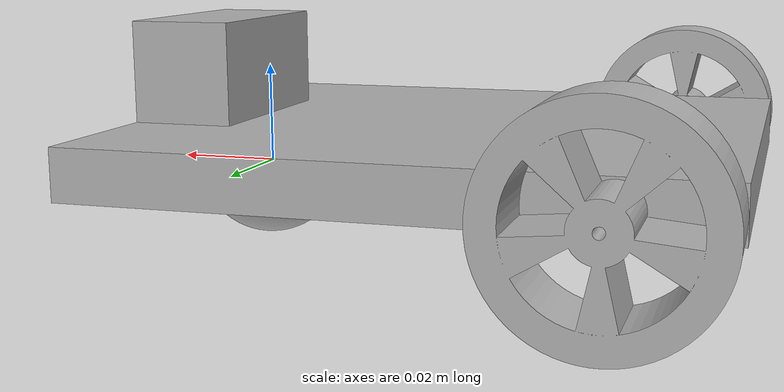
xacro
<?xml version="1.0" ?>
<robot name="differential_drive" xmlns:xacro="http://www.ros.org/wiki/xacro">

<!--Including other xacro files-->
<xacro:include filename="$(find differential_drive_description)/urdf/materials.xacro" />
<xacro:include filename="$(find differential_drive_description)/urdf/differential_drive.trans" />
<xacro:include filename="$(find differential_drive_description)/urdf/differential_drive.gazebo" />

<!--Defining Links-->
<link name="base_link">
  <inertial>
    <origin rpy="0 0 0" xyz="-0.050010469235296664 9.471423530512231e-18 0.0050000000000195"/>
    <mass value="1.0"/>
    <inertia ixx="0.0012083" ixy="-0.0" ixz="0.0" iyy="0.0010167" iyz="0.0" izz="0.0022083"/>
  </inertial>
  <visual>
    <origin rpy="0 0 0" xyz="0 0 0"/>
    <geometry>
      <mesh filename="package://differential_drive_description/meshes/base_link.stl" scale="0.001 0.001 0.001"/>
    </geometry>
    <material name="silver"/>
  </visual>
  <collision>
    <origin rpy="0 0 0" xyz="0 0 0"/>
    <geometry>
      <mesh filename="package://differential_drive_description/meshes/base_link.stl" scale="0.001 0.001 0.001"/>
    </geometry>
  </collision>
</link>

<link name="left_wheel_1">
  <inertial>
    <origin rpy="0 0 0" xyz="-1.1920926745734306e-09 0.009 7.450615905485458e-11"/>
    <mass value="0.25"/>
    <inertia ixx="0.000034514" ixy="0.0" ixz="-0.0" iyy="0.000059653" iyz="-0.0" izz="0.000034514"/>
  </inertial>
  <visual>
    <origin rpy="0 0 0" xyz="0.08 -0.052 -0.005"/>
    <geometry>
      <mesh filename="package://differential_drive_description/meshes/left_wheel_1.stl" scale="0.001 0.001 0.001"/>
    </geometry>
    <material name="silver"/>
  </visual>
  <collision>
    <origin rpy="0 0 0" xyz="0.08 -0.052 -0.005"/>
    <geometry>
      <mesh filename="package://differential_drive_description/meshes/left_wheel_1.stl" scale="0.001 0.001 0.001"/>
    </geometry>
  </collision>
</link>

<link name="right_wheel_1">
  <inertial>
    <origin rpy="0 0 0" xyz="-1.1920926051844916e-09 -0.009 7.450545042031465e-11"/>
    <mass value="0.25"/>
    <inertia ixx="0.000034514" ixy="0.0" ixz="-0.0" iyy="0.000059653" iyz="-0.0" izz="0.000034514"/>
  </inertial>
  <visual>
    <origin rpy="0 0 0" xyz="0.08 0.052 -0.005"/>
    <geometry>
      <mesh filename="package://differential_drive_description/meshes/right_wheel_1.stl" scale="0.001 0.001 0.001"/>
    </geometry>
    <material name="silver"/>
  </visual>
  <collision>
    <origin rpy="0 0 0" xyz="0.08 0.052 -0.005"/>
    <geometry>
      <mesh filename="package://differential_drive_description/meshes/right_wheel_1.stl" scale="0.001 0.001 0.001"/>
    </geometry>
  </collision>
</link>

<link name="caster_wheel_1">
  <inertial>
    <origin rpy="0 0 0" xyz="0.0 -5.039195081648916e-18 -0.0056390049196538596"/>
    <mass value="0.1"/>
    <inertia ixx="0.000005826" ixy="0.0" ixz="0.0" iyy="0.000005814" iyz="0.0" izz="0.000008983"/>
  </inertial>
  <visual>
    <origin rpy="0 0 0" xyz="-0.0 0.0 -0.0"/>
    <geometry>
      <mesh filename="package://differential_drive_description/meshes/caster_wheel_1.stl" scale="0.001 0.001 0.001"/>
    </geometry>
    <material name="silver"/>
  </visual>
  <collision>
    <origin rpy="0 0 0" xyz="-0.0 0.0 -0.0"/>
    <geometry>
      <mesh filename="package://differential_drive_description/meshes/caster_wheel_1.stl" scale="0.001 0.001 0.001"/>
    </geometry>
  </collision>
</link>

<link name="depth_camera_1">
  <inertial>
    <origin rpy="0 0 0" xyz="0.01 0.0 0.01"/>
    <mass value="0.1256"/>
    <inertia ixx="2.1e-05" ixy="0.0" ixz="0.0" iyy="8e-06" iyz="0.0" izz="2.1e-05"/>
  </inertial>
  <visual>
    <origin rpy="0 0 0" xyz="-0.0 -0.0 -0.01"/>
    <geometry>
      <mesh filename="package://differential_drive_description/meshes/depth_camera_1.stl" scale="0.001 0.001 0.001"/>
    </geometry>
    <material name="silver"/>
  </visual>
  <collision>
    <origin rpy="0 0 0" xyz="-0.0 -0.0 -0.01"/>
    <geometry>
      <mesh filename="package://differential_drive_description/meshes/depth_camera_1.stl" scale="0.001 0.001 0.001"/>
    </geometry>
  </collision>
</link>

<!--Defining Joints-->
<joint name="Rev9" type="continuous">
  <origin rpy="0 0 0" xyz="-0.08 0.052 0.005"/>
  <parent link="base_link"/>
  <child link="left_wheel_1"/>
  <axis xyz="0.0 1.0 0.0"/>
  <limit effort="300" velocity="10"/>
</joint>

<joint name="Rev10" type="continuous">
  <origin rpy="0 0 0" xyz="-0.08 -0.052 0.005"/>
  <parent link="base_link"/>
  <child link="right_wheel_1"/>
  <axis xyz="0.0 1.0 0.0"/>
  <limit effort="300" velocity="10"/>
</joint>

<joint name="Rigid13" type="fixed">
  <origin rpy="0 0 0" xyz="0.0 0.0 0.0"/>
  <parent link="base_link"/>
  <child link="caster_wheel_1"/>
</joint>

<joint name="Rigid14" type="fixed">
  <origin rpy="0 0 0" xyz="0.0 0.0 0.01"/>
  <parent link="base_link"/>
  <child link="depth_camera_1"/>
</joint>

<!--Defining Transmission-->
<transmission name="left_wheel_transmission">
  <type>transmission_interface/SimpleTransmission</type>
  <joint name="Rev9">
    <hardwareInterface>hardware_interface/VelocityJointInterface</hardwareInterface>
  </joint>
  <actuator name="left_motor">
    <mechanicalReduction>1</mechanicalReduction>
    <hardwareInterface>VelocityJointInterface</hardwareInterface>
  </actuator>
</transmission>

<transmission name="right_wheel_transmission">
  <type>transmission_interface/SimpleTransmission</type>
  <joint name="Rev10">
    <hardwareInterface>hardware_interface/VelocityJointInterface</hardwareInterface>
  </joint>
  <actuator name="right_motor">
    <mechanicalReduction>1</mechanicalReduction>
    <hardwareInterface>VelocityJointInterface</hardwareInterface>
  </actuator>
</transmission>

</robot>

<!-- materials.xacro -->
<robot name="differential_drive" xmlns:xacro="http://www.ros.org/wiki/xacro" >

<material name="silver">
  <color rgba="0.700 0.700 0.700 1.000"/>
</material>

</robot>
